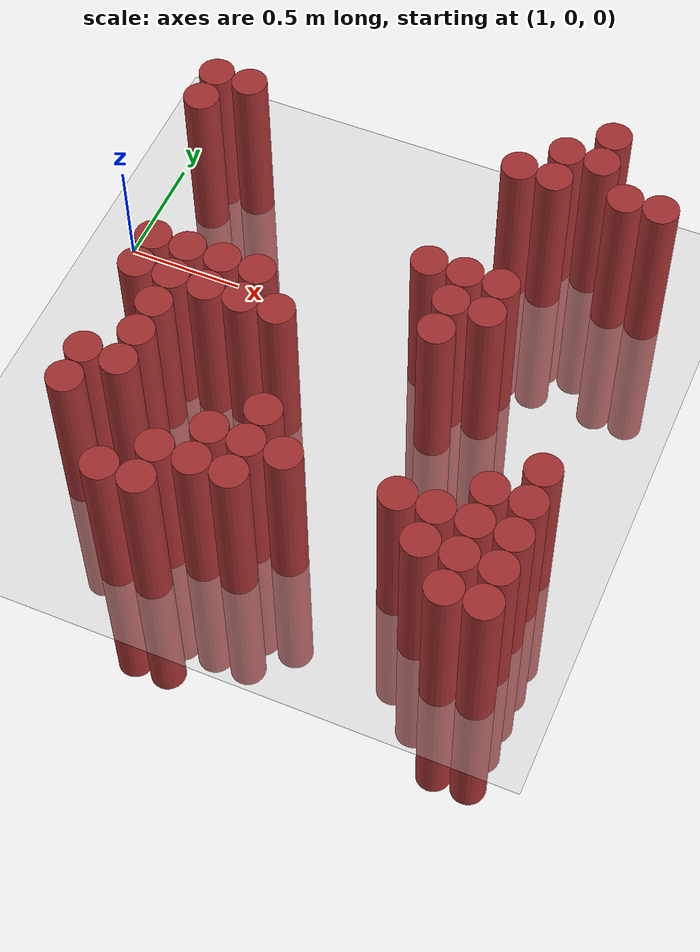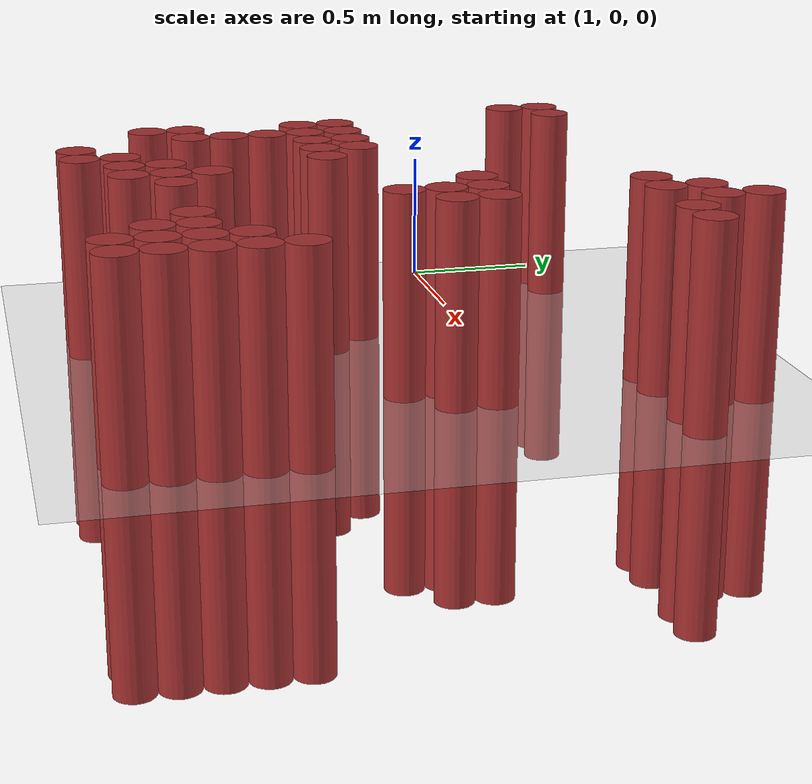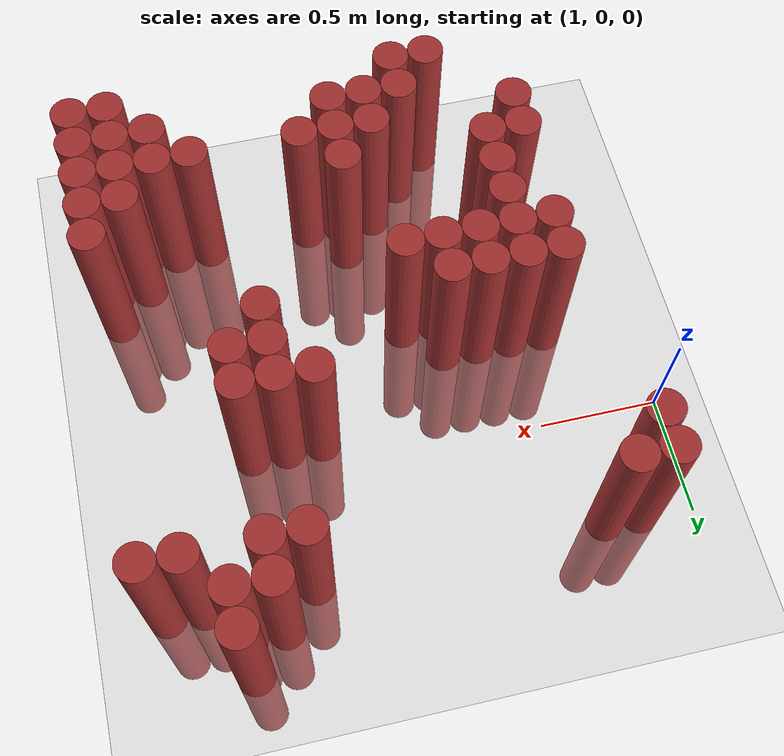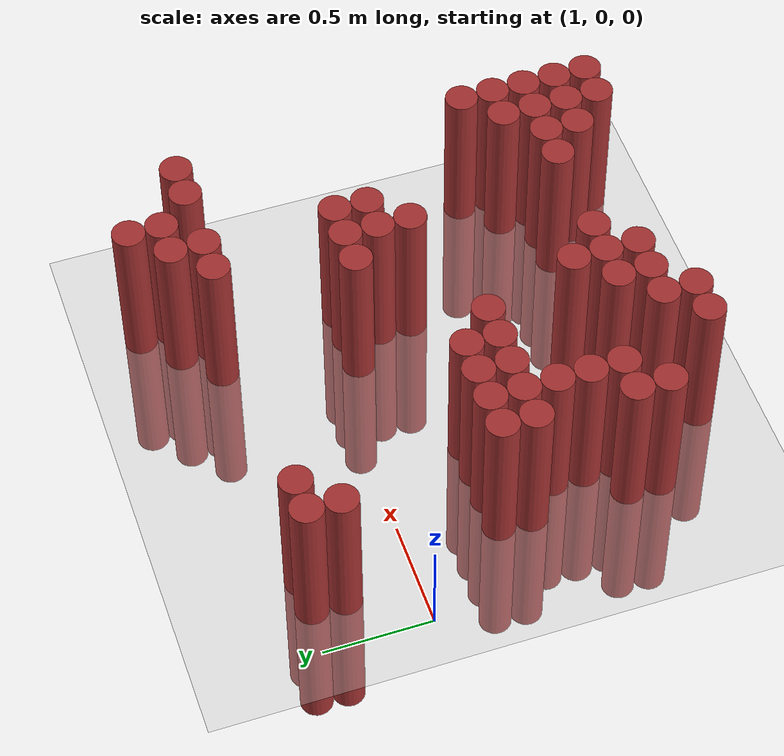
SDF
<sdf version="1.6">
 <world name="default">
  <model name="ground_plane">
   <static>1</static>
   <link name="link">
    <collision name="collision">
     <geometry><plane><normal>0 0 1</normal><size>100 100</size></plane></geometry>
     <surface><friction><ode><mu>100</mu><mu2>50</mu2></ode></friction></surface>
    </collision>
    <visual name="visual">
     <cast_shadows>0</cast_shadows>
     <geometry><plane><normal>0 0 1</normal><size>100 100</size></plane></geometry>
     <material>
      <script><uri>file://media/materials/scripts/gazebo.material</uri><name>Gazebo/Grey</name></script>
     </material>
    </visual>
   </link>
  </model>
  <model name="unit_cylinder_415">
   <static>1</static>
   <pose>1.225000 0.325000 0.000000 0.000000 0.000000 0.000000</pose>
   <link name="link">
    <inertial>
     <mass>1</mass>
     <inertia><ixx>0.145833</ixx><ixy>0</ixy><ixz>0</ixz><iyy>0.145833</iyy><iyz>0</iyz><izz>0.125</izz></inertia>
    </inertial>
    <collision name="collision">
     <geometry><cylinder><radius>0.075000</radius><length>1.5</length></cylinder></geometry>
    </collision>
    <visual name="visual">
     <geometry><cylinder><radius>0.075000</radius><length>1.5</length></cylinder></geometry>
     <material>
      <ambient>0.648000 0.192000 0.192000 1</ambient>
      <diffuse>0.648000 0.192000 0.192000 1</diffuse>
     </material>
     <material>
      <script><name>Gazebo/Grey</name><uri>file://media/materials/scripts/gazebo.material</uri></script>
     </material>
    </visual>
   </link>
  </model>
  <model name="unit_cylinder_416">
   <static>1</static>
   <pose>1.225000 0.475000 0.000000 0.000000 0.000000 0.000000</pose>
   <link name="link">
    <inertial>
     <mass>1</mass>
     <inertia><ixx>0.145833</ixx><ixy>0</ixy><ixz>0</ixz><iyy>0.145833</iyy><iyz>0</iyz><izz>0.125</izz></inertia>
    </inertial>
    <collision name="collision">
     <geometry><cylinder><radius>0.075000</radius><length>1.5</length></cylinder></geometry>
    </collision>
    <visual name="visual">
     <geometry><cylinder><radius>0.075000</radius><length>1.5</length></cylinder></geometry>
     <material>
      <ambient>0.648000 0.192000 0.192000 1</ambient>
      <diffuse>0.648000 0.192000 0.192000 1</diffuse>
     </material>
     <material>
      <script><name>Gazebo/Grey</name><uri>file://media/materials/scripts/gazebo.material</uri></script>
     </material>
    </visual>
   </link>
  </model>
  <model name="unit_cylinder_421">
   <static>1</static>
   <pose>1.375000 -1.175000 0.000000 0.000000 0.000000 0.000000</pose>
   <link name="link">
    <inertial>
     <mass>1</mass>
     <inertia><ixx>0.145833</ixx><ixy>0</ixy><ixz>0</ixz><iyy>0.145833</iyy><iyz>0</iyz><izz>0.125</izz></inertia>
    </inertial>
    <collision name="collision">
     <geometry><cylinder><radius>0.075000</radius><length>1.5</length></cylinder></geometry>
    </collision>
    <visual name="visual">
     <geometry><cylinder><radius>0.075000</radius><length>1.5</length></cylinder></geometry>
     <material>
      <ambient>0.648000 0.192000 0.192000 1</ambient>
      <diffuse>0.648000 0.192000 0.192000 1</diffuse>
     </material>
     <material>
      <script><name>Gazebo/Grey</name><uri>file://media/materials/scripts/gazebo.material</uri></script>
     </material>
    </visual>
   </link>
  </model>
  <model name="unit_cylinder_422">
   <static>1</static>
   <pose>1.375000 -1.025000 0.000000 0.000000 0.000000 0.000000</pose>
   <link name="link">
    <inertial>
     <mass>1</mass>
     <inertia><ixx>0.145833</ixx><ixy>0</ixy><ixz>0</ixz><iyy>0.145833</iyy><iyz>0</iyz><izz>0.125</izz></inertia>
    </inertial>
    <collision name="collision">
     <geometry><cylinder><radius>0.075000</radius><length>1.5</length></cylinder></geometry>
    </collision>
    <visual name="visual">
     <geometry><cylinder><radius>0.075000</radius><length>1.5</length></cylinder></geometry>
     <material>
      <ambient>0.648000 0.192000 0.192000 1</ambient>
      <diffuse>0.648000 0.192000 0.192000 1</diffuse>
     </material>
     <material>
      <script><name>Gazebo/Grey</name><uri>file://media/materials/scripts/gazebo.material</uri></script>
     </material>
    </visual>
   </link>
  </model>
  <model name="unit_cylinder_423">
   <static>1</static>
   <pose>1.375000 -0.575000 0.000000 0.000000 0.000000 0.000000</pose>
   <link name="link">
    <inertial>
     <mass>1</mass>
     <inertia><ixx>0.145833</ixx><ixy>0</ixy><ixz>0</ixz><iyy>0.145833</iyy><iyz>0</iyz><izz>0.125</izz></inertia>
    </inertial>
    <collision name="collision">
     <geometry><cylinder><radius>0.075000</radius><length>1.5</length></cylinder></geometry>
    </collision>
    <visual name="visual">
     <geometry><cylinder><radius>0.075000</radius><length>1.5</length></cylinder></geometry>
     <material>
      <ambient>0.648000 0.192000 0.192000 1</ambient>
      <diffuse>0.648000 0.192000 0.192000 1</diffuse>
     </material>
     <material>
      <script><name>Gazebo/Grey</name><uri>file://media/materials/scripts/gazebo.material</uri></script>
     </material>
    </visual>
   </link>
  </model>
  <model name="unit_cylinder_424">
   <static>1</static>
   <pose>1.375000 -0.425000 0.000000 0.000000 0.000000 0.000000</pose>
   <link name="link">
    <inertial>
     <mass>1</mass>
     <inertia><ixx>0.145833</ixx><ixy>0</ixy><ixz>0</ixz><iyy>0.145833</iyy><iyz>0</iyz><izz>0.125</izz></inertia>
    </inertial>
    <collision name="collision">
     <geometry><cylinder><radius>0.075000</radius><length>1.5</length></cylinder></geometry>
    </collision>
    <visual name="visual">
     <geometry><cylinder><radius>0.075000</radius><length>1.5</length></cylinder></geometry>
     <material>
      <ambient>0.648000 0.192000 0.192000 1</ambient>
      <diffuse>0.648000 0.192000 0.192000 1</diffuse>
     </material>
     <material>
      <script><name>Gazebo/Grey</name><uri>file://media/materials/scripts/gazebo.material</uri></script>
     </material>
    </visual>
   </link>
  </model>
  <model name="unit_cylinder_425">
   <static>1</static>
   <pose>1.375000 0.475000 0.000000 0.000000 0.000000 0.000000</pose>
   <link name="link">
    <inertial>
     <mass>1</mass>
     <inertia><ixx>0.145833</ixx><ixy>0</ixy><ixz>0</ixz><iyy>0.145833</iyy><iyz>0</iyz><izz>0.125</izz></inertia>
    </inertial>
    <collision name="collision">
     <geometry><cylinder><radius>0.075000</radius><length>1.5</length></cylinder></geometry>
    </collision>
    <visual name="visual">
     <geometry><cylinder><radius>0.075000</radius><length>1.5</length></cylinder></geometry>
     <material>
      <ambient>0.648000 0.192000 0.192000 1</ambient>
      <diffuse>0.648000 0.192000 0.192000 1</diffuse>
     </material>
     <material>
      <script><name>Gazebo/Grey</name><uri>file://media/materials/scripts/gazebo.material</uri></script>
     </material>
    </visual>
   </link>
  </model>
  <model name="unit_cylinder_429">
   <static>1</static>
   <pose>1.525000 -1.025000 0.000000 0.000000 0.000000 0.000000</pose>
   <link name="link">
    <inertial>
     <mass>1</mass>
     <inertia><ixx>0.145833</ixx><ixy>0</ixy><ixz>0</ixz><iyy>0.145833</iyy><iyz>0</iyz><izz>0.125</izz></inertia>
    </inertial>
    <collision name="collision">
     <geometry><cylinder><radius>0.075000</radius><length>1.5</length></cylinder></geometry>
    </collision>
    <visual name="visual">
     <geometry><cylinder><radius>0.075000</radius><length>1.5</length></cylinder></geometry>
     <material>
      <ambient>0.648000 0.192000 0.192000 1</ambient>
      <diffuse>0.648000 0.192000 0.192000 1</diffuse>
     </material>
     <material>
      <script><name>Gazebo/Grey</name><uri>file://media/materials/scripts/gazebo.material</uri></script>
     </material>
    </visual>
   </link>
  </model>
  <model name="unit_cylinder_430">
   <static>1</static>
   <pose>1.525000 -0.875000 0.000000 0.000000 0.000000 0.000000</pose>
   <link name="link">
    <inertial>
     <mass>1</mass>
     <inertia><ixx>0.145833</ixx><ixy>0</ixy><ixz>0</ixz><iyy>0.145833</iyy><iyz>0</iyz><izz>0.125</izz></inertia>
    </inertial>
    <collision name="collision">
     <geometry><cylinder><radius>0.075000</radius><length>1.5</length></cylinder></geometry>
    </collision>
    <visual name="visual">
     <geometry><cylinder><radius>0.075000</radius><length>1.5</length></cylinder></geometry>
     <material>
      <ambient>0.648000 0.192000 0.192000 1</ambient>
      <diffuse>0.648000 0.192000 0.192000 1</diffuse>
     </material>
     <material>
      <script><name>Gazebo/Grey</name><uri>file://media/materials/scripts/gazebo.material</uri></script>
     </material>
    </visual>
   </link>
  </model>
  <model name="unit_cylinder_431">
   <static>1</static>
   <pose>1.525000 -0.725000 0.000000 0.000000 0.000000 0.000000</pose>
   <link name="link">
    <inertial>
     <mass>1</mass>
     <inertia><ixx>0.145833</ixx><ixy>0</ixy><ixz>0</ixz><iyy>0.145833</iyy><iyz>0</iyz><izz>0.125</izz></inertia>
    </inertial>
    <collision name="collision">
     <geometry><cylinder><radius>0.075000</radius><length>1.5</length></cylinder></geometry>
    </collision>
    <visual name="visual">
     <geometry><cylinder><radius>0.075000</radius><length>1.5</length></cylinder></geometry>
     <material>
      <ambient>0.648000 0.192000 0.192000 1</ambient>
      <diffuse>0.648000 0.192000 0.192000 1</diffuse>
     </material>
     <material>
      <script><name>Gazebo/Grey</name><uri>file://media/materials/scripts/gazebo.material</uri></script>
     </material>
    </visual>
   </link>
  </model>
  <model name="unit_cylinder_432">
   <static>1</static>
   <pose>1.525000 -0.575000 0.000000 0.000000 0.000000 0.000000</pose>
   <link name="link">
    <inertial>
     <mass>1</mass>
     <inertia><ixx>0.145833</ixx><ixy>0</ixy><ixz>0</ixz><iyy>0.145833</iyy><iyz>0</iyz><izz>0.125</izz></inertia>
    </inertial>
    <collision name="collision">
     <geometry><cylinder><radius>0.075000</radius><length>1.5</length></cylinder></geometry>
    </collision>
    <visual name="visual">
     <geometry><cylinder><radius>0.075000</radius><length>1.5</length></cylinder></geometry>
     <material>
      <ambient>0.648000 0.192000 0.192000 1</ambient>
      <diffuse>0.648000 0.192000 0.192000 1</diffuse>
     </material>
     <material>
      <script><name>Gazebo/Grey</name><uri>file://media/materials/scripts/gazebo.material</uri></script>
     </material>
    </visual>
   </link>
  </model>
  <model name="unit_cylinder_433">
   <static>1</static>
   <pose>1.525000 -0.425000 0.000000 0.000000 0.000000 0.000000</pose>
   <link name="link">
    <inertial>
     <mass>1</mass>
     <inertia><ixx>0.145833</ixx><ixy>0</ixy><ixz>0</ixz><iyy>0.145833</iyy><iyz>0</iyz><izz>0.125</izz></inertia>
    </inertial>
    <collision name="collision">
     <geometry><cylinder><radius>0.075000</radius><length>1.5</length></cylinder></geometry>
    </collision>
    <visual name="visual">
     <geometry><cylinder><radius>0.075000</radius><length>1.5</length></cylinder></geometry>
     <material>
      <ambient>0.648000 0.192000 0.192000 1</ambient>
      <diffuse>0.648000 0.192000 0.192000 1</diffuse>
     </material>
     <material>
      <script><name>Gazebo/Grey</name><uri>file://media/materials/scripts/gazebo.material</uri></script>
     </material>
    </visual>
   </link>
  </model>
  <model name="unit_cylinder_438">
   <static>1</static>
   <pose>1.675000 -1.475000 0.000000 0.000000 0.000000 0.000000</pose>
   <link name="link">
    <inertial>
     <mass>1</mass>
     <inertia><ixx>0.145833</ixx><ixy>0</ixy><ixz>0</ixz><iyy>0.145833</iyy><iyz>0</iyz><izz>0.125</izz></inertia>
    </inertial>
    <collision name="collision">
     <geometry><cylinder><radius>0.075000</radius><length>1.5</length></cylinder></geometry>
    </collision>
    <visual name="visual">
     <geometry><cylinder><radius>0.075000</radius><length>1.5</length></cylinder></geometry>
     <material>
      <ambient>0.648000 0.192000 0.192000 1</ambient>
      <diffuse>0.648000 0.192000 0.192000 1</diffuse>
     </material>
     <material>
      <script><name>Gazebo/Grey</name><uri>file://media/materials/scripts/gazebo.material</uri></script>
     </material>
    </visual>
   </link>
  </model>
  <model name="unit_cylinder_439">
   <static>1</static>
   <pose>1.675000 -0.575000 0.000000 0.000000 0.000000 0.000000</pose>
   <link name="link">
    <inertial>
     <mass>1</mass>
     <inertia><ixx>0.145833</ixx><ixy>0</ixy><ixz>0</ixz><iyy>0.145833</iyy><iyz>0</iyz><izz>0.125</izz></inertia>
    </inertial>
    <collision name="collision">
     <geometry><cylinder><radius>0.075000</radius><length>1.5</length></cylinder></geometry>
    </collision>
    <visual name="visual">
     <geometry><cylinder><radius>0.075000</radius><length>1.5</length></cylinder></geometry>
     <material>
      <ambient>0.648000 0.192000 0.192000 1</ambient>
      <diffuse>0.648000 0.192000 0.192000 1</diffuse>
     </material>
     <material>
      <script><name>Gazebo/Grey</name><uri>file://media/materials/scripts/gazebo.material</uri></script>
     </material>
    </visual>
   </link>
  </model>
  <model name="unit_cylinder_440">
   <static>1</static>
   <pose>1.675000 -0.425000 0.000000 0.000000 0.000000 0.000000</pose>
   <link name="link">
    <inertial>
     <mass>1</mass>
     <inertia><ixx>0.145833</ixx><ixy>0</ixy><ixz>0</ixz><iyy>0.145833</iyy><iyz>0</iyz><izz>0.125</izz></inertia>
    </inertial>
    <collision name="collision">
     <geometry><cylinder><radius>0.075000</radius><length>1.5</length></cylinder></geometry>
    </collision>
    <visual name="visual">
     <geometry><cylinder><radius>0.075000</radius><length>1.5</length></cylinder></geometry>
     <material>
      <ambient>0.648000 0.192000 0.192000 1</ambient>
      <diffuse>0.648000 0.192000 0.192000 1</diffuse>
     </material>
     <material>
      <script><name>Gazebo/Grey</name><uri>file://media/materials/scripts/gazebo.material</uri></script>
     </material>
    </visual>
   </link>
  </model>
  <model name="unit_cylinder_445">
   <static>1</static>
   <pose>1.825000 -1.475000 0.000000 0.000000 0.000000 0.000000</pose>
   <link name="link">
    <inertial>
     <mass>1</mass>
     <inertia><ixx>0.145833</ixx><ixy>0</ixy><ixz>0</ixz><iyy>0.145833</iyy><iyz>0</iyz><izz>0.125</izz></inertia>
    </inertial>
    <collision name="collision">
     <geometry><cylinder><radius>0.075000</radius><length>1.5</length></cylinder></geometry>
    </collision>
    <visual name="visual">
     <geometry><cylinder><radius>0.075000</radius><length>1.5</length></cylinder></geometry>
     <material>
      <ambient>0.648000 0.192000 0.192000 1</ambient>
      <diffuse>0.648000 0.192000 0.192000 1</diffuse>
     </material>
     <material>
      <script><name>Gazebo/Grey</name><uri>file://media/materials/scripts/gazebo.material</uri></script>
     </material>
    </visual>
   </link>
  </model>
  <model name="unit_cylinder_446">
   <static>1</static>
   <pose>1.825000 -1.325000 0.000000 0.000000 0.000000 0.000000</pose>
   <link name="link">
    <inertial>
     <mass>1</mass>
     <inertia><ixx>0.145833</ixx><ixy>0</ixy><ixz>0</ixz><iyy>0.145833</iyy><iyz>0</iyz><izz>0.125</izz></inertia>
    </inertial>
    <collision name="collision">
     <geometry><cylinder><radius>0.075000</radius><length>1.5</length></cylinder></geometry>
    </collision>
    <visual name="visual">
     <geometry><cylinder><radius>0.075000</radius><length>1.5</length></cylinder></geometry>
     <material>
      <ambient>0.648000 0.192000 0.192000 1</ambient>
      <diffuse>0.648000 0.192000 0.192000 1</diffuse>
     </material>
     <material>
      <script><name>Gazebo/Grey</name><uri>file://media/materials/scripts/gazebo.material</uri></script>
     </material>
    </visual>
   </link>
  </model>
  <model name="unit_cylinder_447">
   <static>1</static>
   <pose>1.825000 -0.575000 0.000000 0.000000 0.000000 0.000000</pose>
   <link name="link">
    <inertial>
     <mass>1</mass>
     <inertia><ixx>0.145833</ixx><ixy>0</ixy><ixz>0</ixz><iyy>0.145833</iyy><iyz>0</iyz><izz>0.125</izz></inertia>
    </inertial>
    <collision name="collision">
     <geometry><cylinder><radius>0.075000</radius><length>1.5</length></cylinder></geometry>
    </collision>
    <visual name="visual">
     <geometry><cylinder><radius>0.075000</radius><length>1.5</length></cylinder></geometry>
     <material>
      <ambient>0.648000 0.192000 0.192000 1</ambient>
      <diffuse>0.648000 0.192000 0.192000 1</diffuse>
     </material>
     <material>
      <script><name>Gazebo/Grey</name><uri>file://media/materials/scripts/gazebo.material</uri></script>
     </material>
    </visual>
   </link>
  </model>
  <model name="unit_cylinder_448">
   <static>1</static>
   <pose>1.825000 -0.425000 0.000000 0.000000 0.000000 0.000000</pose>
   <link name="link">
    <inertial>
     <mass>1</mass>
     <inertia><ixx>0.145833</ixx><ixy>0</ixy><ixz>0</ixz><iyy>0.145833</iyy><iyz>0</iyz><izz>0.125</izz></inertia>
    </inertial>
    <collision name="collision">
     <geometry><cylinder><radius>0.075000</radius><length>1.5</length></cylinder></geometry>
    </collision>
    <visual name="visual">
     <geometry><cylinder><radius>0.075000</radius><length>1.5</length></cylinder></geometry>
     <material>
      <ambient>0.648000 0.192000 0.192000 1</ambient>
      <diffuse>0.648000 0.192000 0.192000 1</diffuse>
     </material>
     <material>
      <script><name>Gazebo/Grey</name><uri>file://media/materials/scripts/gazebo.material</uri></script>
     </material>
    </visual>
   </link>
  </model>
  <model name="unit_cylinder_455">
   <static>1</static>
   <pose>1.975000 -1.325000 0.000000 0.000000 0.000000 0.000000</pose>
   <link name="link">
    <inertial>
     <mass>1</mass>
     <inertia><ixx>0.145833</ixx><ixy>0</ixy><ixz>0</ixz><iyy>0.145833</iyy><iyz>0</iyz><izz>0.125</izz></inertia>
    </inertial>
    <collision name="collision">
     <geometry><cylinder><radius>0.075000</radius><length>1.5</length></cylinder></geometry>
    </collision>
    <visual name="visual">
     <geometry><cylinder><radius>0.075000</radius><length>1.5</length></cylinder></geometry>
     <material>
      <ambient>0.648000 0.192000 0.192000 1</ambient>
      <diffuse>0.648000 0.192000 0.192000 1</diffuse>
     </material>
     <material>
      <script><name>Gazebo/Grey</name><uri>file://media/materials/scripts/gazebo.material</uri></script>
     </material>
    </visual>
   </link>
  </model>
  <model name="unit_cylinder_456">
   <static>1</static>
   <pose>1.975000 -1.175000 0.000000 0.000000 0.000000 0.000000</pose>
   <link name="link">
    <inertial>
     <mass>1</mass>
     <inertia><ixx>0.145833</ixx><ixy>0</ixy><ixz>0</ixz><iyy>0.145833</iyy><iyz>0</iyz><izz>0.125</izz></inertia>
    </inertial>
    <collision name="collision">
     <geometry><cylinder><radius>0.075000</radius><length>1.5</length></cylinder></geometry>
    </collision>
    <visual name="visual">
     <geometry><cylinder><radius>0.075000</radius><length>1.5</length></cylinder></geometry>
     <material>
      <ambient>0.648000 0.192000 0.192000 1</ambient>
      <diffuse>0.648000 0.192000 0.192000 1</diffuse>
     </material>
     <material>
      <script><name>Gazebo/Grey</name><uri>file://media/materials/scripts/gazebo.material</uri></script>
     </material>
    </visual>
   </link>
  </model>
  <model name="unit_cylinder_457">
   <static>1</static>
   <pose>1.975000 -0.575000 0.000000 0.000000 0.000000 0.000000</pose>
   <link name="link">
    <inertial>
     <mass>1</mass>
     <inertia><ixx>0.145833</ixx><ixy>0</ixy><ixz>0</ixz><iyy>0.145833</iyy><iyz>0</iyz><izz>0.125</izz></inertia>
    </inertial>
    <collision name="collision">
     <geometry><cylinder><radius>0.075000</radius><length>1.5</length></cylinder></geometry>
    </collision>
    <visual name="visual">
     <geometry><cylinder><radius>0.075000</radius><length>1.5</length></cylinder></geometry>
     <material>
      <ambient>0.648000 0.192000 0.192000 1</ambient>
      <diffuse>0.648000 0.192000 0.192000 1</diffuse>
     </material>
     <material>
      <script><name>Gazebo/Grey</name><uri>file://media/materials/scripts/gazebo.material</uri></script>
     </material>
    </visual>
   </link>
  </model>
  <model name="unit_cylinder_468">
   <static>1</static>
   <pose>2.125000 -1.325000 0.000000 0.000000 0.000000 0.000000</pose>
   <link name="link">
    <inertial>
     <mass>1</mass>
     <inertia><ixx>0.145833</ixx><ixy>0</ixy><ixz>0</ixz><iyy>0.145833</iyy><iyz>0</iyz><izz>0.125</izz></inertia>
    </inertial>
    <collision name="collision">
     <geometry><cylinder><radius>0.075000</radius><length>1.5</length></cylinder></geometry>
    </collision>
    <visual name="visual">
     <geometry><cylinder><radius>0.075000</radius><length>1.5</length></cylinder></geometry>
     <material>
      <ambient>0.648000 0.192000 0.192000 1</ambient>
      <diffuse>0.648000 0.192000 0.192000 1</diffuse>
     </material>
     <material>
      <script><name>Gazebo/Grey</name><uri>file://media/materials/scripts/gazebo.material</uri></script>
     </material>
    </visual>
   </link>
  </model>
  <model name="unit_cylinder_469">
   <static>1</static>
   <pose>2.125000 -1.175000 0.000000 0.000000 0.000000 0.000000</pose>
   <link name="link">
    <inertial>
     <mass>1</mass>
     <inertia><ixx>0.145833</ixx><ixy>0</ixy><ixz>0</ixz><iyy>0.145833</iyy><iyz>0</iyz><izz>0.125</izz></inertia>
    </inertial>
    <collision name="collision">
     <geometry><cylinder><radius>0.075000</radius><length>1.5</length></cylinder></geometry>
    </collision>
    <visual name="visual">
     <geometry><cylinder><radius>0.075000</radius><length>1.5</length></cylinder></geometry>
     <material>
      <ambient>0.648000 0.192000 0.192000 1</ambient>
      <diffuse>0.648000 0.192000 0.192000 1</diffuse>
     </material>
     <material>
      <script><name>Gazebo/Grey</name><uri>file://media/materials/scripts/gazebo.material</uri></script>
     </material>
    </visual>
   </link>
  </model>
  <model name="unit_cylinder_470">
   <static>1</static>
   <pose>2.125000 -1.025000 0.000000 0.000000 0.000000 0.000000</pose>
   <link name="link">
    <inertial>
     <mass>1</mass>
     <inertia><ixx>0.145833</ixx><ixy>0</ixy><ixz>0</ixz><iyy>0.145833</iyy><iyz>0</iyz><izz>0.125</izz></inertia>
    </inertial>
    <collision name="collision">
     <geometry><cylinder><radius>0.075000</radius><length>1.5</length></cylinder></geometry>
    </collision>
    <visual name="visual">
     <geometry><cylinder><radius>0.075000</radius><length>1.5</length></cylinder></geometry>
     <material>
      <ambient>0.648000 0.192000 0.192000 1</ambient>
      <diffuse>0.648000 0.192000 0.192000 1</diffuse>
     </material>
     <material>
      <script><name>Gazebo/Grey</name><uri>file://media/materials/scripts/gazebo.material</uri></script>
     </material>
    </visual>
   </link>
  </model>
  <model name="unit_cylinder_478">
   <static>1</static>
   <pose>2.275000 -1.175000 0.000000 0.000000 0.000000 0.000000</pose>
   <link name="link">
    <inertial>
     <mass>1</mass>
     <inertia><ixx>0.145833</ixx><ixy>0</ixy><ixz>0</ixz><iyy>0.145833</iyy><iyz>0</iyz><izz>0.125</izz></inertia>
    </inertial>
    <collision name="collision">
     <geometry><cylinder><radius>0.075000</radius><length>1.5</length></cylinder></geometry>
    </collision>
    <visual name="visual">
     <geometry><cylinder><radius>0.075000</radius><length>1.5</length></cylinder></geometry>
     <material>
      <ambient>0.648000 0.192000 0.192000 1</ambient>
      <diffuse>0.648000 0.192000 0.192000 1</diffuse>
     </material>
     <material>
      <script><name>Gazebo/Grey</name><uri>file://media/materials/scripts/gazebo.material</uri></script>
     </material>
    </visual>
   </link>
  </model>
  <model name="unit_cylinder_483">
   <static>1</static>
   <pose>2.425000 -0.125000 0.000000 0.000000 0.000000 0.000000</pose>
   <link name="link">
    <inertial>
     <mass>1</mass>
     <inertia><ixx>0.145833</ixx><ixy>0</ixy><ixz>0</ixz><iyy>0.145833</iyy><iyz>0</iyz><izz>0.125</izz></inertia>
    </inertial>
    <collision name="collision">
     <geometry><cylinder><radius>0.075000</radius><length>1.5</length></cylinder></geometry>
    </collision>
    <visual name="visual">
     <geometry><cylinder><radius>0.075000</radius><length>1.5</length></cylinder></geometry>
     <material>
      <ambient>0.648000 0.192000 0.192000 1</ambient>
      <diffuse>0.648000 0.192000 0.192000 1</diffuse>
     </material>
     <material>
      <script><name>Gazebo/Grey</name><uri>file://media/materials/scripts/gazebo.material</uri></script>
     </material>
    </visual>
   </link>
  </model>
  <model name="unit_cylinder_488">
   <static>1</static>
   <pose>2.575000 -0.425000 0.000000 0.000000 0.000000 0.000000</pose>
   <link name="link">
    <inertial>
     <mass>1</mass>
     <inertia><ixx>0.145833</ixx><ixy>0</ixy><ixz>0</ixz><iyy>0.145833</iyy><iyz>0</iyz><izz>0.125</izz></inertia>
    </inertial>
    <collision name="collision">
     <geometry><cylinder><radius>0.075000</radius><length>1.5</length></cylinder></geometry>
    </collision>
    <visual name="visual">
     <geometry><cylinder><radius>0.075000</radius><length>1.5</length></cylinder></geometry>
     <material>
      <ambient>0.648000 0.192000 0.192000 1</ambient>
      <diffuse>0.648000 0.192000 0.192000 1</diffuse>
     </material>
     <material>
      <script><name>Gazebo/Grey</name><uri>file://media/materials/scripts/gazebo.material</uri></script>
     </material>
    </visual>
   </link>
  </model>
  <model name="unit_cylinder_489">
   <static>1</static>
   <pose>2.575000 -0.275000 0.000000 0.000000 0.000000 0.000000</pose>
   <link name="link">
    <inertial>
     <mass>1</mass>
     <inertia><ixx>0.145833</ixx><ixy>0</ixy><ixz>0</ixz><iyy>0.145833</iyy><iyz>0</iyz><izz>0.125</izz></inertia>
    </inertial>
    <collision name="collision">
     <geometry><cylinder><radius>0.075000</radius><length>1.5</length></cylinder></geometry>
    </collision>
    <visual name="visual">
     <geometry><cylinder><radius>0.075000</radius><length>1.5</length></cylinder></geometry>
     <material>
      <ambient>0.648000 0.192000 0.192000 1</ambient>
      <diffuse>0.648000 0.192000 0.192000 1</diffuse>
     </material>
     <material>
      <script><name>Gazebo/Grey</name><uri>file://media/materials/scripts/gazebo.material</uri></script>
     </material>
    </visual>
   </link>
  </model>
  <model name="unit_cylinder_490">
   <static>1</static>
   <pose>2.575000 -0.125000 0.000000 0.000000 0.000000 0.000000</pose>
   <link name="link">
    <inertial>
     <mass>1</mass>
     <inertia><ixx>0.145833</ixx><ixy>0</ixy><ixz>0</ixz><iyy>0.145833</iyy><iyz>0</iyz><izz>0.125</izz></inertia>
    </inertial>
    <collision name="collision">
     <geometry><cylinder><radius>0.075000</radius><length>1.5</length></cylinder></geometry>
    </collision>
    <visual name="visual">
     <geometry><cylinder><radius>0.075000</radius><length>1.5</length></cylinder></geometry>
     <material>
      <ambient>0.648000 0.192000 0.192000 1</ambient>
      <diffuse>0.648000 0.192000 0.192000 1</diffuse>
     </material>
     <material>
      <script><name>Gazebo/Grey</name><uri>file://media/materials/scripts/gazebo.material</uri></script>
     </material>
    </visual>
   </link>
  </model>
  <model name="unit_cylinder_491">
   <static>1</static>
   <pose>2.575000 0.475000 0.000000 0.000000 0.000000 0.000000</pose>
   <link name="link">
    <inertial>
     <mass>1</mass>
     <inertia><ixx>0.145833</ixx><ixy>0</ixy><ixz>0</ixz><iyy>0.145833</iyy><iyz>0</iyz><izz>0.125</izz></inertia>
    </inertial>
    <collision name="collision">
     <geometry><cylinder><radius>0.075000</radius><length>1.5</length></cylinder></geometry>
    </collision>
    <visual name="visual">
     <geometry><cylinder><radius>0.075000</radius><length>1.5</length></cylinder></geometry>
     <material>
      <ambient>0.648000 0.192000 0.192000 1</ambient>
      <diffuse>0.648000 0.192000 0.192000 1</diffuse>
     </material>
     <material>
      <script><name>Gazebo/Grey</name><uri>file://media/materials/scripts/gazebo.material</uri></script>
     </material>
    </visual>
   </link>
  </model>
  <model name="unit_cylinder_500">
   <static>1</static>
   <pose>2.725000 -1.175000 0.000000 0.000000 0.000000 0.000000</pose>
   <link name="link">
    <inertial>
     <mass>1</mass>
     <inertia><ixx>0.145833</ixx><ixy>0</ixy><ixz>0</ixz><iyy>0.145833</iyy><iyz>0</iyz><izz>0.125</izz></inertia>
    </inertial>
    <collision name="collision">
     <geometry><cylinder><radius>0.075000</radius><length>1.5</length></cylinder></geometry>
    </collision>
    <visual name="visual">
     <geometry><cylinder><radius>0.075000</radius><length>1.5</length></cylinder></geometry>
     <material>
      <ambient>0.648000 0.192000 0.192000 1</ambient>
      <diffuse>0.648000 0.192000 0.192000 1</diffuse>
     </material>
     <material>
      <script><name>Gazebo/Grey</name><uri>file://media/materials/scripts/gazebo.material</uri></script>
     </material>
    </visual>
   </link>
  </model>
  <model name="unit_cylinder_501">
   <static>1</static>
   <pose>2.725000 -0.275000 0.000000 0.000000 0.000000 0.000000</pose>
   <link name="link">
    <inertial>
     <mass>1</mass>
     <inertia><ixx>0.145833</ixx><ixy>0</ixy><ixz>0</ixz><iyy>0.145833</iyy><iyz>0</iyz><izz>0.125</izz></inertia>
    </inertial>
    <collision name="collision">
     <geometry><cylinder><radius>0.075000</radius><length>1.5</length></cylinder></geometry>
    </collision>
    <visual name="visual">
     <geometry><cylinder><radius>0.075000</radius><length>1.5</length></cylinder></geometry>
     <material>
      <ambient>0.648000 0.192000 0.192000 1</ambient>
      <diffuse>0.648000 0.192000 0.192000 1</diffuse>
     </material>
     <material>
      <script><name>Gazebo/Grey</name><uri>file://media/materials/scripts/gazebo.material</uri></script>
     </material>
    </visual>
   </link>
  </model>
  <model name="unit_cylinder_502">
   <static>1</static>
   <pose>2.725000 -0.125000 0.000000 0.000000 0.000000 0.000000</pose>
   <link name="link">
    <inertial>
     <mass>1</mass>
     <inertia><ixx>0.145833</ixx><ixy>0</ixy><ixz>0</ixz><iyy>0.145833</iyy><iyz>0</iyz><izz>0.125</izz></inertia>
    </inertial>
    <collision name="collision">
     <geometry><cylinder><radius>0.075000</radius><length>1.5</length></cylinder></geometry>
    </collision>
    <visual name="visual">
     <geometry><cylinder><radius>0.075000</radius><length>1.5</length></cylinder></geometry>
     <material>
      <ambient>0.648000 0.192000 0.192000 1</ambient>
      <diffuse>0.648000 0.192000 0.192000 1</diffuse>
     </material>
     <material>
      <script><name>Gazebo/Grey</name><uri>file://media/materials/scripts/gazebo.material</uri></script>
     </material>
    </visual>
   </link>
  </model>
  <model name="unit_cylinder_503">
   <static>1</static>
   <pose>2.725000 0.475000 0.000000 0.000000 0.000000 0.000000</pose>
   <link name="link">
    <inertial>
     <mass>1</mass>
     <inertia><ixx>0.145833</ixx><ixy>0</ixy><ixz>0</ixz><iyy>0.145833</iyy><iyz>0</iyz><izz>0.125</izz></inertia>
    </inertial>
    <collision name="collision">
     <geometry><cylinder><radius>0.075000</radius><length>1.5</length></cylinder></geometry>
    </collision>
    <visual name="visual">
     <geometry><cylinder><radius>0.075000</radius><length>1.5</length></cylinder></geometry>
     <material>
      <ambient>0.648000 0.192000 0.192000 1</ambient>
      <diffuse>0.648000 0.192000 0.192000 1</diffuse>
     </material>
     <material>
      <script><name>Gazebo/Grey</name><uri>file://media/materials/scripts/gazebo.material</uri></script>
     </material>
    </visual>
   </link>
  </model>
  <model name="unit_cylinder_504">
   <static>1</static>
   <pose>2.725000 0.625000 0.000000 0.000000 0.000000 0.000000</pose>
   <link name="link">
    <inertial>
     <mass>1</mass>
     <inertia><ixx>0.145833</ixx><ixy>0</ixy><ixz>0</ixz><iyy>0.145833</iyy><iyz>0</iyz><izz>0.125</izz></inertia>
    </inertial>
    <collision name="collision">
     <geometry><cylinder><radius>0.075000</radius><length>1.5</length></cylinder></geometry>
    </collision>
    <visual name="visual">
     <geometry><cylinder><radius>0.075000</radius><length>1.5</length></cylinder></geometry>
     <material>
      <ambient>0.648000 0.192000 0.192000 1</ambient>
      <diffuse>0.648000 0.192000 0.192000 1</diffuse>
     </material>
     <material>
      <script><name>Gazebo/Grey</name><uri>file://media/materials/scripts/gazebo.material</uri></script>
     </material>
    </visual>
   </link>
  </model>
  <model name="unit_cylinder_515">
   <static>1</static>
   <pose>2.875000 -1.325000 0.000000 0.000000 0.000000 0.000000</pose>
   <link name="link">
    <inertial>
     <mass>1</mass>
     <inertia><ixx>0.145833</ixx><ixy>0</ixy><ixz>0</ixz><iyy>0.145833</iyy><iyz>0</iyz><izz>0.125</izz></inertia>
    </inertial>
    <collision name="collision">
     <geometry><cylinder><radius>0.075000</radius><length>1.5</length></cylinder></geometry>
    </collision>
    <visual name="visual">
     <geometry><cylinder><radius>0.075000</radius><length>1.5</length></cylinder></geometry>
     <material>
      <ambient>0.648000 0.192000 0.192000 1</ambient>
      <diffuse>0.648000 0.192000 0.192000 1</diffuse>
     </material>
     <material>
      <script><name>Gazebo/Grey</name><uri>file://media/materials/scripts/gazebo.material</uri></script>
     </material>
    </visual>
   </link>
  </model>
  <model name="unit_cylinder_516">
   <static>1</static>
   <pose>2.875000 -1.175000 0.000000 0.000000 0.000000 0.000000</pose>
   <link name="link">
    <inertial>
     <mass>1</mass>
     <inertia><ixx>0.145833</ixx><ixy>0</ixy><ixz>0</ixz><iyy>0.145833</iyy><iyz>0</iyz><izz>0.125</izz></inertia>
    </inertial>
    <collision name="collision">
     <geometry><cylinder><radius>0.075000</radius><length>1.5</length></cylinder></geometry>
    </collision>
    <visual name="visual">
     <geometry><cylinder><radius>0.075000</radius><length>1.5</length></cylinder></geometry>
     <material>
      <ambient>0.648000 0.192000 0.192000 1</ambient>
      <diffuse>0.648000 0.192000 0.192000 1</diffuse>
     </material>
     <material>
      <script><name>Gazebo/Grey</name><uri>file://media/materials/scripts/gazebo.material</uri></script>
     </material>
    </visual>
   </link>
  </model>
  <model name="unit_cylinder_517">
   <static>1</static>
   <pose>2.875000 0.625000 0.000000 0.000000 0.000000 0.000000</pose>
   <link name="link">
    <inertial>
     <mass>1</mass>
     <inertia><ixx>0.145833</ixx><ixy>0</ixy><ixz>0</ixz><iyy>0.145833</iyy><iyz>0</iyz><izz>0.125</izz></inertia>
    </inertial>
    <collision name="collision">
     <geometry><cylinder><radius>0.075000</radius><length>1.5</length></cylinder></geometry>
    </collision>
    <visual name="visual">
     <geometry><cylinder><radius>0.075000</radius><length>1.5</length></cylinder></geometry>
     <material>
      <ambient>0.648000 0.192000 0.192000 1</ambient>
      <diffuse>0.648000 0.192000 0.192000 1</diffuse>
     </material>
     <material>
      <script><name>Gazebo/Grey</name><uri>file://media/materials/scripts/gazebo.material</uri></script>
     </material>
    </visual>
   </link>
  </model>
  <model name="unit_cylinder_518">
   <static>1</static>
   <pose>2.875000 0.775000 0.000000 0.000000 0.000000 0.000000</pose>
   <link name="link">
    <inertial>
     <mass>1</mass>
     <inertia><ixx>0.145833</ixx><ixy>0</ixy><ixz>0</ixz><iyy>0.145833</iyy><iyz>0</iyz><izz>0.125</izz></inertia>
    </inertial>
    <collision name="collision">
     <geometry><cylinder><radius>0.075000</radius><length>1.5</length></cylinder></geometry>
    </collision>
    <visual name="visual">
     <geometry><cylinder><radius>0.075000</radius><length>1.5</length></cylinder></geometry>
     <material>
      <ambient>0.648000 0.192000 0.192000 1</ambient>
      <diffuse>0.648000 0.192000 0.192000 1</diffuse>
     </material>
     <material>
      <script><name>Gazebo/Grey</name><uri>file://media/materials/scripts/gazebo.material</uri></script>
     </material>
    </visual>
   </link>
  </model>
  <model name="unit_cylinder_526">
   <static>1</static>
   <pose>3.025000 -1.475000 0.000000 0.000000 0.000000 0.000000</pose>
   <link name="link">
    <inertial>
     <mass>1</mass>
     <inertia><ixx>0.145833</ixx><ixy>0</ixy><ixz>0</ixz><iyy>0.145833</iyy><iyz>0</iyz><izz>0.125</izz></inertia>
    </inertial>
    <collision name="collision">
     <geometry><cylinder><radius>0.075000</radius><length>1.5</length></cylinder></geometry>
    </collision>
    <visual name="visual">
     <geometry><cylinder><radius>0.075000</radius><length>1.5</length></cylinder></geometry>
     <material>
      <ambient>0.648000 0.192000 0.192000 1</ambient>
      <diffuse>0.648000 0.192000 0.192000 1</diffuse>
     </material>
     <material>
      <script><name>Gazebo/Grey</name><uri>file://media/materials/scripts/gazebo.material</uri></script>
     </material>
    </visual>
   </link>
  </model>
  <model name="unit_cylinder_527">
   <static>1</static>
   <pose>3.025000 -1.325000 0.000000 0.000000 0.000000 0.000000</pose>
   <link name="link">
    <inertial>
     <mass>1</mass>
     <inertia><ixx>0.145833</ixx><ixy>0</ixy><ixz>0</ixz><iyy>0.145833</iyy><iyz>0</iyz><izz>0.125</izz></inertia>
    </inertial>
    <collision name="collision">
     <geometry><cylinder><radius>0.075000</radius><length>1.5</length></cylinder></geometry>
    </collision>
    <visual name="visual">
     <geometry><cylinder><radius>0.075000</radius><length>1.5</length></cylinder></geometry>
     <material>
      <ambient>0.648000 0.192000 0.192000 1</ambient>
      <diffuse>0.648000 0.192000 0.192000 1</diffuse>
     </material>
     <material>
      <script><name>Gazebo/Grey</name><uri>file://media/materials/scripts/gazebo.material</uri></script>
     </material>
    </visual>
   </link>
  </model>
  <model name="unit_cylinder_528">
   <static>1</static>
   <pose>3.025000 -1.175000 0.000000 0.000000 0.000000 0.000000</pose>
   <link name="link">
    <inertial>
     <mass>1</mass>
     <inertia><ixx>0.145833</ixx><ixy>0</ixy><ixz>0</ixz><iyy>0.145833</iyy><iyz>0</iyz><izz>0.125</izz></inertia>
    </inertial>
    <collision name="collision">
     <geometry><cylinder><radius>0.075000</radius><length>1.5</length></cylinder></geometry>
    </collision>
    <visual name="visual">
     <geometry><cylinder><radius>0.075000</radius><length>1.5</length></cylinder></geometry>
     <material>
      <ambient>0.648000 0.192000 0.192000 1</ambient>
      <diffuse>0.648000 0.192000 0.192000 1</diffuse>
     </material>
     <material>
      <script><name>Gazebo/Grey</name><uri>file://media/materials/scripts/gazebo.material</uri></script>
     </material>
    </visual>
   </link>
  </model>
  <model name="unit_cylinder_529">
   <static>1</static>
   <pose>3.025000 -1.025000 0.000000 0.000000 0.000000 0.000000</pose>
   <link name="link">
    <inertial>
     <mass>1</mass>
     <inertia><ixx>0.145833</ixx><ixy>0</ixy><ixz>0</ixz><iyy>0.145833</iyy><iyz>0</iyz><izz>0.125</izz></inertia>
    </inertial>
    <collision name="collision">
     <geometry><cylinder><radius>0.075000</radius><length>1.5</length></cylinder></geometry>
    </collision>
    <visual name="visual">
     <geometry><cylinder><radius>0.075000</radius><length>1.5</length></cylinder></geometry>
     <material>
      <ambient>0.648000 0.192000 0.192000 1</ambient>
      <diffuse>0.648000 0.192000 0.192000 1</diffuse>
     </material>
     <material>
      <script><name>Gazebo/Grey</name><uri>file://media/materials/scripts/gazebo.material</uri></script>
     </material>
    </visual>
   </link>
  </model>
  <model name="unit_cylinder_530">
   <static>1</static>
   <pose>3.025000 0.475000 0.000000 0.000000 0.000000 0.000000</pose>
   <link name="link">
    <inertial>
     <mass>1</mass>
     <inertia><ixx>0.145833</ixx><ixy>0</ixy><ixz>0</ixz><iyy>0.145833</iyy><iyz>0</iyz><izz>0.125</izz></inertia>
    </inertial>
    <collision name="collision">
     <geometry><cylinder><radius>0.075000</radius><length>1.5</length></cylinder></geometry>
    </collision>
    <visual name="visual">
     <geometry><cylinder><radius>0.075000</radius><length>1.5</length></cylinder></geometry>
     <material>
      <ambient>0.648000 0.192000 0.192000 1</ambient>
      <diffuse>0.648000 0.192000 0.192000 1</diffuse>
     </material>
     <material>
      <script><name>Gazebo/Grey</name><uri>file://media/materials/scripts/gazebo.material</uri></script>
     </material>
    </visual>
   </link>
  </model>
  <model name="unit_cylinder_537">
   <static>1</static>
   <pose>3.175000 -1.475000 0.000000 0.000000 0.000000 0.000000</pose>
   <link name="link">
    <inertial>
     <mass>1</mass>
     <inertia><ixx>0.145833</ixx><ixy>0</ixy><ixz>0</ixz><iyy>0.145833</iyy><iyz>0</iyz><izz>0.125</izz></inertia>
    </inertial>
    <collision name="collision">
     <geometry><cylinder><radius>0.075000</radius><length>1.5</length></cylinder></geometry>
    </collision>
    <visual name="visual">
     <geometry><cylinder><radius>0.075000</radius><length>1.5</length></cylinder></geometry>
     <material>
      <ambient>0.648000 0.192000 0.192000 1</ambient>
      <diffuse>0.648000 0.192000 0.192000 1</diffuse>
     </material>
     <material>
      <script><name>Gazebo/Grey</name><uri>file://media/materials/scripts/gazebo.material</uri></script>
     </material>
    </visual>
   </link>
  </model>
  <model name="unit_cylinder_538">
   <static>1</static>
   <pose>3.175000 -1.325000 0.000000 0.000000 0.000000 0.000000</pose>
   <link name="link">
    <inertial>
     <mass>1</mass>
     <inertia><ixx>0.145833</ixx><ixy>0</ixy><ixz>0</ixz><iyy>0.145833</iyy><iyz>0</iyz><izz>0.125</izz></inertia>
    </inertial>
    <collision name="collision">
     <geometry><cylinder><radius>0.075000</radius><length>1.5</length></cylinder></geometry>
    </collision>
    <visual name="visual">
     <geometry><cylinder><radius>0.075000</radius><length>1.5</length></cylinder></geometry>
     <material>
      <ambient>0.648000 0.192000 0.192000 1</ambient>
      <diffuse>0.648000 0.192000 0.192000 1</diffuse>
     </material>
     <material>
      <script><name>Gazebo/Grey</name><uri>file://media/materials/scripts/gazebo.material</uri></script>
     </material>
    </visual>
   </link>
  </model>
  <model name="unit_cylinder_539">
   <static>1</static>
   <pose>3.175000 -1.175000 0.000000 0.000000 0.000000 0.000000</pose>
   <link name="link">
    <inertial>
     <mass>1</mass>
     <inertia><ixx>0.145833</ixx><ixy>0</ixy><ixz>0</ixz><iyy>0.145833</iyy><iyz>0</iyz><izz>0.125</izz></inertia>
    </inertial>
    <collision name="collision">
     <geometry><cylinder><radius>0.075000</radius><length>1.5</length></cylinder></geometry>
    </collision>
    <visual name="visual">
     <geometry><cylinder><radius>0.075000</radius><length>1.5</length></cylinder></geometry>
     <material>
      <ambient>0.648000 0.192000 0.192000 1</ambient>
      <diffuse>0.648000 0.192000 0.192000 1</diffuse>
     </material>
     <material>
      <script><name>Gazebo/Grey</name><uri>file://media/materials/scripts/gazebo.material</uri></script>
     </material>
    </visual>
   </link>
  </model>
  <model name="unit_cylinder_540">
   <static>1</static>
   <pose>3.175000 -1.025000 0.000000 0.000000 0.000000 0.000000</pose>
   <link name="link">
    <inertial>
     <mass>1</mass>
     <inertia><ixx>0.145833</ixx><ixy>0</ixy><ixz>0</ixz><iyy>0.145833</iyy><iyz>0</iyz><izz>0.125</izz></inertia>
    </inertial>
    <collision name="collision">
     <geometry><cylinder><radius>0.075000</radius><length>1.5</length></cylinder></geometry>
    </collision>
    <visual name="visual">
     <geometry><cylinder><radius>0.075000</radius><length>1.5</length></cylinder></geometry>
     <material>
      <ambient>0.648000 0.192000 0.192000 1</ambient>
      <diffuse>0.648000 0.192000 0.192000 1</diffuse>
     </material>
     <material>
      <script><name>Gazebo/Grey</name><uri>file://media/materials/scripts/gazebo.material</uri></script>
     </material>
    </visual>
   </link>
  </model>
  <model name="unit_cylinder_541">
   <static>1</static>
   <pose>3.175000 -0.875000 0.000000 0.000000 0.000000 0.000000</pose>
   <link name="link">
    <inertial>
     <mass>1</mass>
     <inertia><ixx>0.145833</ixx><ixy>0</ixy><ixz>0</ixz><iyy>0.145833</iyy><iyz>0</iyz><izz>0.125</izz></inertia>
    </inertial>
    <collision name="collision">
     <geometry><cylinder><radius>0.075000</radius><length>1.5</length></cylinder></geometry>
    </collision>
    <visual name="visual">
     <geometry><cylinder><radius>0.075000</radius><length>1.5</length></cylinder></geometry>
     <material>
      <ambient>0.648000 0.192000 0.192000 1</ambient>
      <diffuse>0.648000 0.192000 0.192000 1</diffuse>
     </material>
     <material>
      <script><name>Gazebo/Grey</name><uri>file://media/materials/scripts/gazebo.material</uri></script>
     </material>
    </visual>
   </link>
  </model>
  <model name="unit_cylinder_542">
   <static>1</static>
   <pose>3.175000 0.475000 0.000000 0.000000 0.000000 0.000000</pose>
   <link name="link">
    <inertial>
     <mass>1</mass>
     <inertia><ixx>0.145833</ixx><ixy>0</ixy><ixz>0</ixz><iyy>0.145833</iyy><iyz>0</iyz><izz>0.125</izz></inertia>
    </inertial>
    <collision name="collision">
     <geometry><cylinder><radius>0.075000</radius><length>1.5</length></cylinder></geometry>
    </collision>
    <visual name="visual">
     <geometry><cylinder><radius>0.075000</radius><length>1.5</length></cylinder></geometry>
     <material>
      <ambient>0.648000 0.192000 0.192000 1</ambient>
      <diffuse>0.648000 0.192000 0.192000 1</diffuse>
     </material>
     <material>
      <script><name>Gazebo/Grey</name><uri>file://media/materials/scripts/gazebo.material</uri></script>
     </material>
    </visual>
   </link>
  </model>
 </world>
</sdf>
